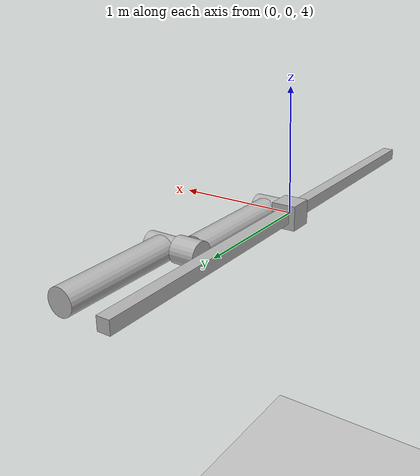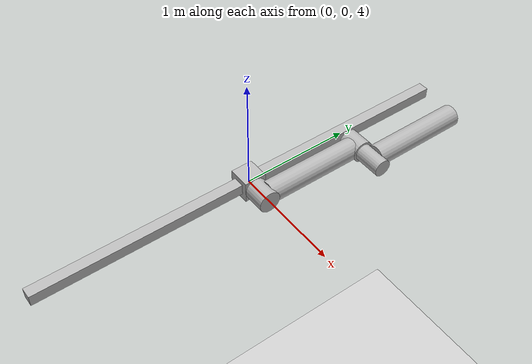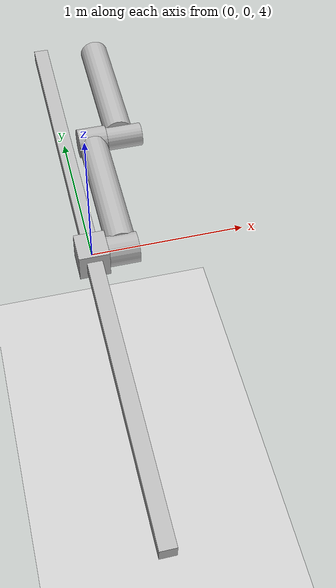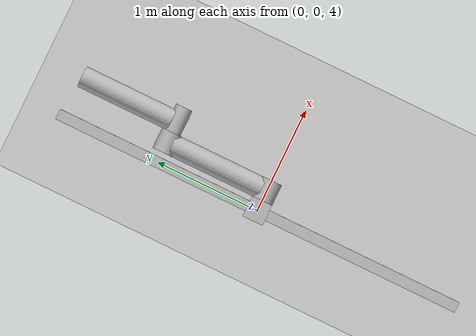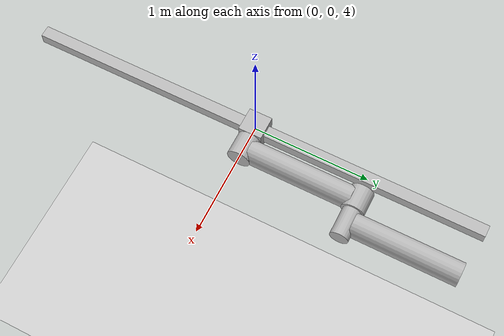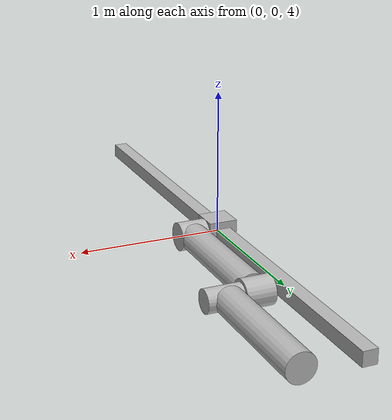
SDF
<?xml version="1.0" ?>
<sdf version="1.6">
  <world name="default">
    <physics name="1ms" type="ode">
      <max_step_size>0.001</max_step_size>
      <real_time_factor>1</real_time_factor>
    </physics>

    <light type="directional" name="sun">
      <cast_shadows>false</cast_shadows>
      <pose>0 0 10 0 0 0</pose>
      <diffuse>0.8 0.8 0.8 1</diffuse>
      <specular>0.2 0.2 0.2 1</specular>
      <attenuation>
        <range>1000</range>
        <constant>0.9</constant>
        <linear>0.01</linear>
        <quadratic>0.001</quadratic>
      </attenuation>
      <direction>-0.5 0.1 -0.9</direction>
    </light>

    <model name="ground_plane">
      <static>true</static>
      <link name="link">
        <collision name="collision">
          <geometry>
            <plane>
              <normal>0 0 1</normal>
              <size>100 100</size>
            </plane>
          </geometry>
        </collision>
        <visual name="visual">
          <geometry>
            <plane>
              <normal>0 0 1</normal>
              <size>100 100</size>
            </plane>
          </geometry>
          <material>
            <ambient>0.8 0.8 0.8 1</ambient>
            <diffuse>0.8 0.8 0.8 1</diffuse>
            <specular>0.8 0.8 0.8 1</specular>
          </material>
        </visual>
      </link>
    </model>

    <model name="double_pendulum_rail">
      <!-- rail -->
      <link name="rail">
        <pose>0 0 4 0 0 0</pose>
        <inertial>
          <mass>1000</mass>
        </inertial>
        <visual name="vis_rail">
          <pose>0 0 0 0 0 0</pose>
          <geometry>
            <box>
              <size>0.1 4 0.1</size>
            </box>
          </geometry>
        </visual>
        <collision name="col_rail_on_ground">
          <pose>0 0 -2 0 0 0</pose>
          <geometry>
            <box>
              <size>1 4 4</size>
            </box>
          </geometry>
        </collision>
      </link>

      <!-- support -->
      <link name="trolley">
        <pose>0 0 4 0 0 0</pose>
        <inertial>
          <mass>100</mass>
        </inertial>
        <visual name="vis_trolley_on_rail">
          <pose>0 0 0 0 0 0</pose>
          <geometry>
            <box>
              <size>0.2 0.2 0.2</size>
            </box>
          </geometry>
        </visual>
      </link>
      <!-- upper link, length 1, IC -90 degrees -->
      <link name="upper_link">
        <pose>0.2 0 4 -1.5708 0 0</pose>
        <self_collide>0</self_collide>
        <inertial>
          <pose>0 0 0.5 0 0 0</pose>
        </inertial>
        <visual name="vis_upper_joint">
          <pose>0 0 0 0 1.5708 0</pose>
          <geometry>
            <cylinder>
              <radius>0.1</radius>
              <length>0.2</length>
            </cylinder>
          </geometry>
        </visual>
        <visual name="vis_lower_joint">
          <pose>0 0 1.0 0 1.5708 0</pose>
          <geometry>
            <cylinder>
              <radius>0.1</radius>
              <length>0.2</length>
            </cylinder>
          </geometry>
        </visual>
        <visual name="vis_cylinder">
          <pose>0 0 0.5 0 0 0</pose>
          <geometry>
            <cylinder>
              <radius>0.1</radius>
              <length>0.9</length>
            </cylinder>
          </geometry>
        </visual>
      </link>
      <!-- lower link, length 1, IC ~-120 degrees more -->
      <link name="lower_link">
        <pose>0.4 1 4 -1.5708 0 0</pose>
        <self_collide>0</self_collide>
        <inertial>
          <pose>0 0 0.5 0 0 0</pose>
        </inertial>
        <visual name="vis_lower_joint">
          <pose>0 0 0 0 1.5708 0</pose>
          <geometry>
            <cylinder>
              <radius>0.08</radius>
              <length>0.3</length>
            </cylinder>
          </geometry>
        </visual>
        <visual name="vis_cylinder">
          <pose>0 0 0.5 0 0 0</pose>
          <geometry>
            <cylinder>
              <radius>0.1</radius>
              <length>0.9</length>
            </cylinder>
          </geometry>
        </visual>
      </link>

      <!-- pin joint for upper link, at origin of upper link -->
      <joint name="upper_joint" type="revolute">
        <parent>trolley</parent>
        <child>upper_link</child>
        <axis>
          <xyz>1.0 0 0</xyz>
        </axis>
      </joint>
      <!-- pin joint for lower link, at origin of child link -->
      <joint name="lower_joint" type="revolute">
        <parent>upper_link</parent>
        <child>lower_link</child>
        <axis>
          <xyz>1.0 0 0</xyz>
        </axis>
      </joint>

      <joint name="rail_trolley_joint" type="prismatic">
        <parent>rail</parent>
        <child>trolley</child>
        <axis>
          <xyz>0 1.0 0</xyz>
          <limit>
            <lower>-2.0</lower>
            <upper>2.0</upper>
          </limit>
        </axis>
      </joint>

      <plugin
        filename="ignition-gazebo-joint-state-publisher-system"
        name="ignition::gazebo::systems::JointStatePublisher">
      </plugin>

      <plugin
        filename="ignition-gazebo-pose-publisher-system"
        name="ignition::gazebo::systems::PosePublisher">
        <publish_link_pose>true</publish_link_pose>

        <use_pose_vector_msg>true</use_pose_vector_msg>
      </plugin>

      <plugin
        filename="ignition-gazebo-joint-controller-system"
        name="ignition::gazebo::systems::JointController">
        <joint_name>rail_trolley_joint</joint_name>
         <initial_velocity>0.0</initial_velocity>
        <min_position>-2.0</min_position>
        <max_position>2.0</max_position>
      </plugin>
    </model>
  </world>
</sdf>
